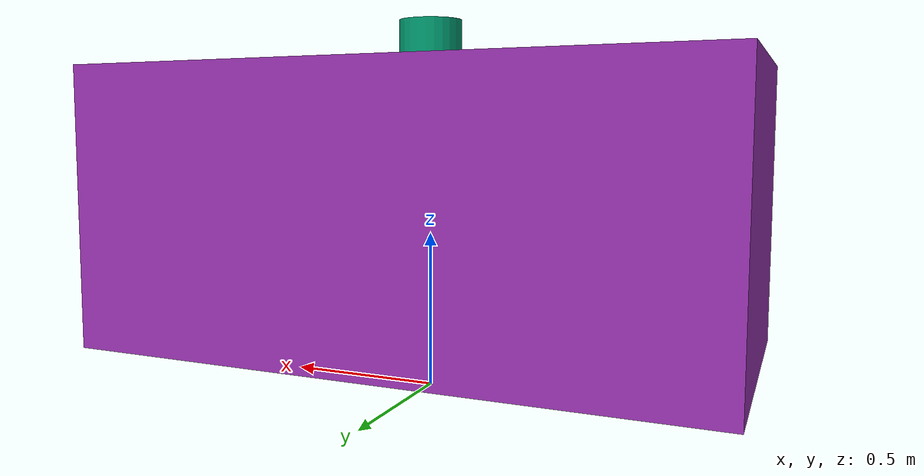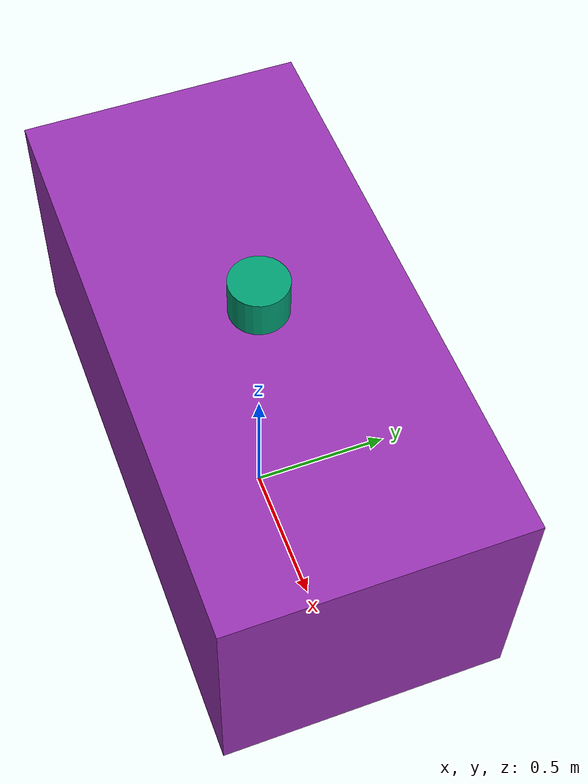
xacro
<?xml version="1.0"?>

<robot name="erp42" xmlns:xacro="http://www.ros.org/xacro">

    <!-- ************************ Base Link ******************************** -->
   <link name= "base_footprint"/>

   <joint name="base_joint" type="fixed">
     <parent link="base_footprint"/>
     <child link="base_link"/>
     <origin xyz="0.0 0.0 0.53" rpy="0 0 0"/>
   </joint>

   <link name = "base_link">
    <visual>
        <origin xyz="0 0 0.055" rpy="0 0 0" />
        <geometry>
            <box size = "2.02 0.985 0.906"/>
        </geometry>
        <material name="purple"/>
    </visual>
    <collision>
      <geometry>
            <box size = "2.02 0.985 0.4364"/>
        </geometry>
    </collision>

  </link>
<!-- ########################################Lidar################################### -->
<link name="lidar">
	    <collision>
	    	<origin xyz="0 0 0.071" rpy="0 0 0"/>
	      	<geometry>
	    		<cylinder radius="0.1" length="0.142"/>
	      	</geometry>
	    </collision>

	    <visual>
	    	<origin xyz="0 0 0.071" rpy="0 0 0"/>
	      	<geometry>
	    		<cylinder radius="0.1" length="0.142"/>
	      	</geometry>
	      	<material name="crusta"/>
	    </visual>
	</link>

	<joint name="lidar_joint" type="fixed">
	    <parent link="base_link"/>
	    <child link="lidar"/>
	    <origin xyz="0 0 0.508" rpy="0 0 0"/>
	</joint>
</robot>
